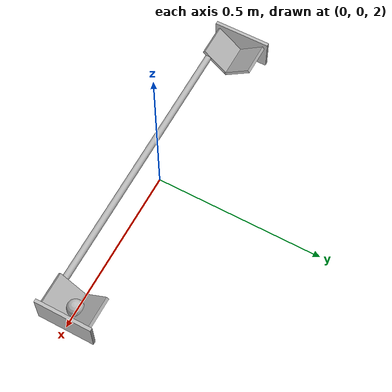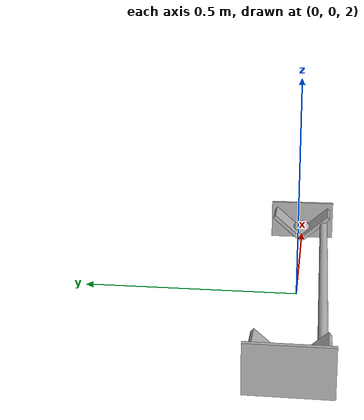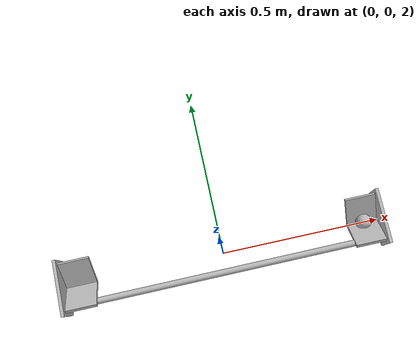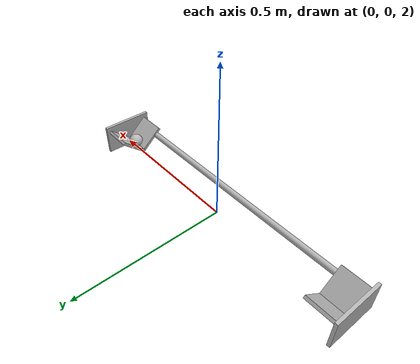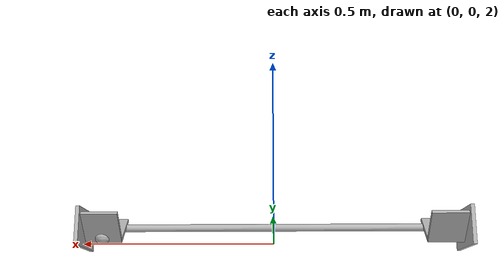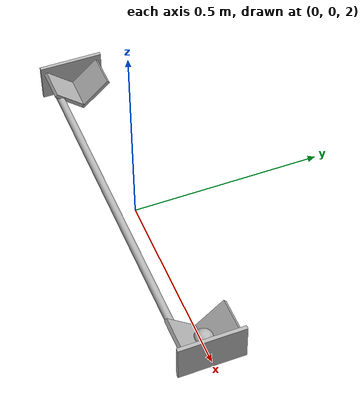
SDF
<?xml version="1.0" ?>
<sdf version="1.5">

  <model name="schaal-juggler">
    <pose>0 0 2.000000 -0.000000 0.000000 0</pose>
    <link name="ball">
      <self_collide>1</self_collide>
      <pose>0.45 0.0 0.0250000 -0.000000 0.000000 0</pose>
      <inertial> <!-- box dim: w=1, h=.025, d=1 -->
        <pose>0 0 0 0.000000 -0.000000 0.000000</pose>
        <inertia>
          <ixx>.00000025</ixx>
          <ixy>0</ixy>
          <ixz>0</ixz>
          <iyy>0.0000025</iyy>
          <iyz>0</iyz>
          <izz>0.0000025</izz>
        </inertia>
        <mass>.01</mass>
      </inertial>
      <collision name="ball-geom">
        <pose>0 -0.00000 0.000000 0.000000 0 -0.000000</pose>
        <geometry>
          <sphere>
            <radius>.025</radius>
          </sphere>
        </geometry>
        <surface>
          <friction>
            <ode>
              <mu>0.00000</mu>
              <mu2>0.00000</mu2>
              <fdir1>0.000000 0.000000 0.000000</fdir1>
              <slip1>0.000000</slip1>
              <slip2>0.000000</slip2>
            </ode>
          </friction>
          <bounce>
            <restitution_coefficient>1.0000000</restitution_coefficient>
            <threshold>0.000000</threshold>
          </bounce>
          <contact>
            <ode>
              <soft_cfm>0.000000</soft_cfm>
              <soft_erp>0.000000</soft_erp>
              <kp>1000000000000.000000</kp>
              <kd>1.000000</kd>
              <max_vel>10000.000000</max_vel>
              <min_depth>0.001000</min_depth>
            </ode>
          </contact>
        </surface>
        <laser_retro>0.000000</laser_retro>
      </collision>
      <visual name="ball-visual">
        <pose>-0 -0.00000 0.000000 0.000000 0 -0.000000</pose>
        <geometry>
          <sphere>
            <radius>.025</radius>
          </sphere>
        </geometry>
        <cast_shadows>1</cast_shadows>
        <laser_retro>0.000000</laser_retro>
        <transparency>0.000000</transparency>
      </visual>
    </link>

    <link name="juggler">
      <self_collide>1</self_collide>
      <pose>0 0 0.000000 -0.000000 000 0</pose>
      <inertial> <!-- box dim: w=1, h=.025, d=1 -->
        <pose>0 0 0 0.000000 -0.000000 0.000000</pose>
        <inertia>
          <ixx>.16667</ixx>
          <ixy>0</ixy>
          <ixz>0</ixz>
          <iyy>0.085417</iyy>
          <iyz>0</iyz>
          <izz>0.16667</izz>
        </inertia>
        <mass>1.0</mass>
      </inertial>
      <collision name="rod-geom">
        <pose>0 -.06 0.05 0 1.57080 -0.000000</pose>
        <geometry>
          <cylinder>
            <radius>.01</radius>
            <length>1</length>
          </cylinder>
        </geometry>
        <surface>
          <friction>
            <ode>
              <mu>0.00000</mu>
              <mu2>0.00000</mu2>
              <fdir1>0.000000 0.000000 0.000000</fdir1>
              <slip1>0.000000</slip1>
              <slip2>0.000000</slip2>
            </ode>
          </friction>
          <bounce>
            <restitution_coefficient>0.0000000</restitution_coefficient>
            <threshold>100000.000000</threshold>
          </bounce>
          <contact>
            <ode>
              <soft_cfm>0.000000</soft_cfm>
              <soft_erp>0.000000</soft_erp>
              <kp>1000000000000.000000</kp>
              <kd>1.000000</kd>
              <max_vel>0.000000</max_vel>
              <min_depth>0.001000</min_depth>
            </ode>
          </contact>
        </surface>
        <laser_retro>0.000000</laser_retro>
      </collision>
      <collision name="cup1-geom1">
        <pose>0.45 0.035356 0.0400000 .70711 0 -0.000000</pose>
        <geometry>
          <box>
            <size>.1 .1 .01</size>
          </box>
        </geometry>
        <surface>
          <friction>
            <ode>
              <mu>0.00000</mu>
              <mu2>0.00000</mu2>
              <fdir1>0.000000 0.000000 0.000000</fdir1>
              <slip1>0.000000</slip1>
              <slip2>0.000000</slip2>
            </ode>
          </friction>
          <bounce>
            <restitution_coefficient>0.0000000</restitution_coefficient>
            <threshold>100000.000000</threshold>
          </bounce>
          <contact>
            <ode>
              <soft_cfm>0.000000</soft_cfm>
              <soft_erp>0.000000</soft_erp>
              <kp>1000000000000.000000</kp>
              <kd>1.000000</kd>
              <max_vel>0.000000</max_vel>
              <min_depth>0.001000</min_depth>
            </ode>
          </contact>
        </surface>
        <laser_retro>0.000000</laser_retro>
      </collision>
      <collision name="cup1-geom2">
        <pose>0.45 -0.035356 0.04000 -0.70711000000 -0 -0.000000</pose>
        <geometry>
          <box>
            <size>.1 .1 .01</size>
          </box>
        </geometry>
        <surface>
          <friction>
            <ode>
              <mu>0.00000</mu>
              <mu2>0.00000</mu2>
              <fdir1>0.000000 0.000000 0.000000</fdir1>
              <slip1>0.000000</slip1>
              <slip2>0.000000</slip2>
            </ode>
          </friction>
          <bounce>
            <restitution_coefficient>0.0000000</restitution_coefficient>
            <threshold>100000.000000</threshold>
          </bounce>
          <contact>
            <ode>
              <soft_cfm>0.000000</soft_cfm>
              <soft_erp>0.000000</soft_erp>
              <kp>1000000000000.000000</kp>
              <kd>1.000000</kd>
              <max_vel>0.000000</max_vel>
              <min_depth>0.001000</min_depth>
            </ode>
          </contact>
        </surface>
        <laser_retro>0.000000</laser_retro>
      </collision>
      <collision name="cup1-geom3">
        <pose>0.5 -0.0 0.04000 0.000000 -0 -0.000000</pose>
        <geometry>
          <box>
            <size>.01 .17 .1</size>
          </box>
        </geometry>
        <surface>
          <friction>
            <ode>
              <mu>0.00000</mu>
              <mu2>0.00000</mu2>
              <fdir1>0.000000 0.000000 0.000000</fdir1>
              <slip1>0.000000</slip1>
              <slip2>0.000000</slip2>
            </ode>
          </friction>
          <bounce>
            <restitution_coefficient>0.0000000</restitution_coefficient>
            <threshold>100000.000000</threshold>
          </bounce>
          <contact>
            <ode>
              <soft_cfm>0.000000</soft_cfm>
              <soft_erp>0.000000</soft_erp>
              <kp>1000000000000.000000</kp>
              <kd>1.000000</kd>
              <max_vel>0.000000</max_vel>
              <min_depth>0.001000</min_depth>
            </ode>
          </contact>
        </surface>
        <laser_retro>0.000000</laser_retro>
      </collision>
      <collision name="cup2-geom1">
        <pose>-0.45 0.035356 0.0400000 .70711 0 -0.000000</pose>
        <geometry>
          <box>
            <size>.1 .1 .01</size>
          </box>
        </geometry>
        <surface>
          <friction>
            <ode>
              <mu>0.00000</mu>
              <mu2>0.00000</mu2>
              <fdir1>0.000000 0.000000 0.000000</fdir1>
              <slip1>0.000000</slip1>
              <slip2>0.000000</slip2>
            </ode>
          </friction>
          <bounce>
            <restitution_coefficient>0.0000000</restitution_coefficient>
            <threshold>100000.000000</threshold>
          </bounce>
          <contact>
            <ode>
              <soft_cfm>0.000000</soft_cfm>
              <soft_erp>0.000000</soft_erp>
              <kp>1000000000000.000000</kp>
              <kd>1.000000</kd>
              <max_vel>0.000000</max_vel>
              <min_depth>0.001000</min_depth>
            </ode>
          </contact>
        </surface>
        <laser_retro>0.000000</laser_retro>
      </collision>
      <collision name="cup2-geom2">
        <pose>-0.45 -0.035356 0.04000 -0.70711000000 -0 -0.000000</pose>
        <geometry>
          <box>
            <size>.1 .1 .01</size>
          </box>
        </geometry>
        <surface>
          <friction>
            <ode>
              <mu>0.00000</mu>
              <mu2>0.00000</mu2>
              <fdir1>0.000000 0.000000 0.000000</fdir1>
              <slip1>0.000000</slip1>
              <slip2>0.000000</slip2>
            </ode>
          </friction>
          <bounce>
            <restitution_coefficient>0.0000000</restitution_coefficient>
            <threshold>100000.000000</threshold>
          </bounce>
          <contact>
            <ode>
              <soft_cfm>0.000000</soft_cfm>
              <soft_erp>0.000000</soft_erp>
              <kp>1000000000000.000000</kp>
              <kd>1.000000</kd>
              <max_vel>0.000000</max_vel>
              <min_depth>0.001000</min_depth>
            </ode>
          </contact>
        </surface>
        <laser_retro>0.000000</laser_retro>
      </collision>
      <collision name="cup2-geom3">
        <pose>-0.5 -0.0 0.04000 0.000000 -0 -0.000000</pose>
        <geometry>
          <box>
            <size>.01 .17 .1</size>
          </box>
        </geometry>
        <surface>
          <friction>
            <ode>
              <mu>0.00000</mu>
              <mu2>0.00000</mu2>
              <fdir1>0.000000 0.000000 0.000000</fdir1>
              <slip1>0.000000</slip1>
              <slip2>0.000000</slip2>
            </ode>
          </friction>
          <bounce>
            <restitution_coefficient>0.0000000</restitution_coefficient>
            <threshold>100000.000000</threshold>
          </bounce>
          <contact>
            <ode>
              <soft_cfm>0.000000</soft_cfm>
              <soft_erp>0.000000</soft_erp>
              <kp>1000000000000.000000</kp>
              <kd>1.000000</kd>
              <max_vel>0.000000</max_vel>
              <min_depth>0.001000</min_depth>
            </ode>
          </contact>
        </surface>
        <laser_retro>0.000000</laser_retro>
      </collision>
      <visual name="rod-visual">
        <pose>0 -0.06000 0.0500000 0 1.5708000000 -0.000000</pose>
        <geometry>
          <cylinder>
            <radius>.01</radius>
            <length>1</length>
          </cylinder>
        </geometry>
        <cast_shadows>1</cast_shadows>
        <laser_retro>0.000000</laser_retro>
        <transparency>0.000000</transparency>
      </visual>
      <visual name="cup1-visual1">
        <pose>0.45 0.035356 0.0400000 .70711 0 -0.000000</pose>
        <geometry>
          <box>
            <size>.1 .1 .01</size>
          </box>
        </geometry>
        <cast_shadows>1</cast_shadows>
        <laser_retro>0.000000</laser_retro>
        <transparency>0.000000</transparency>
      </visual>
      <visual name="cup1-visual2">
        <pose>0.45 -0.035356 0.04000 -0.70711000000 -0 -0.000000</pose>
        <geometry>
          <box>
            <size>.1 .1 .01</size>
          </box>
        </geometry>
        <cast_shadows>1</cast_shadows>
        <laser_retro>0.000000</laser_retro>
        <transparency>0.000000</transparency>
      </visual>
      <visual name="cup1-visual3">
        <pose>0.5 -0.0 0.04000 0.000000 -0 -0.000000</pose>
        <geometry>
          <box>
            <size>.01 .17 .1</size>
          </box>
        </geometry>
        <cast_shadows>1</cast_shadows>
        <laser_retro>0.000000</laser_retro>
        <transparency>0.000000</transparency>
      </visual>
      <visual name="cup2-visual1">
        <pose>-0.45 0.035356 0.0400000 .70711 0 -0.000000</pose>
        <geometry>
          <box>
            <size>.1 .1 .01</size>
          </box>
        </geometry>
        <cast_shadows>1</cast_shadows>
        <laser_retro>0.000000</laser_retro>
        <transparency>0.000000</transparency>
      </visual>
      <visual name="cup2-visual2">
        <pose>-0.45 -0.035356 0.04000 -0.70711000000 -0 -0.000000</pose>
        <geometry>
          <box>
            <size>.1 .1 .01</size>
          </box>
        </geometry>
        <cast_shadows>1</cast_shadows>
        <laser_retro>0.000000</laser_retro>
        <transparency>0.000000</transparency>
      </visual>
      <visual name="cup2-visual3">
        <pose>-0.5 -0.0 0.04000 0.000000 -0 -0.000000</pose>
        <geometry>
          <box>
            <size>.01 .17 .1</size>
          </box>
        </geometry>
        <cast_shadows>1</cast_shadows>
        <laser_retro>0.000000</laser_retro>
        <transparency>0.000000</transparency>
      </visual>
      <gravity>1</gravity>
      <self_collide>0</self_collide>
      <kinematic>0</kinematic>
    </link>

    <joint name="juggler-joint" type="revolute">
      <pose>0.000000 -0.0600000 0.05 0.000000 -0.000000 0.000000</pose>
      <parent>world</parent>
      <child>juggler</child>
      <axis>
        <dynamics>
          <damping>0.000000</damping>
          <friction>0.000000</friction>
        </dynamics>
        <limit>
          <lower>-0.548000</lower>
          <upper>0.548000</upper>
          <effort>10000.000000</effort>
          <velocity>1000.000000</velocity>
        </limit>
        <xyz>0.000000 1.000000 0.000000</xyz>
        <use_parent_model_frame>true</use_parent_model_frame>
      </axis>
    </joint>

    <plugin name="juggler-plugin" filename="/home/drum/.gazebo/models/schaal-juggler/debug/libjuggler.so" />
  </model>
</sdf>
